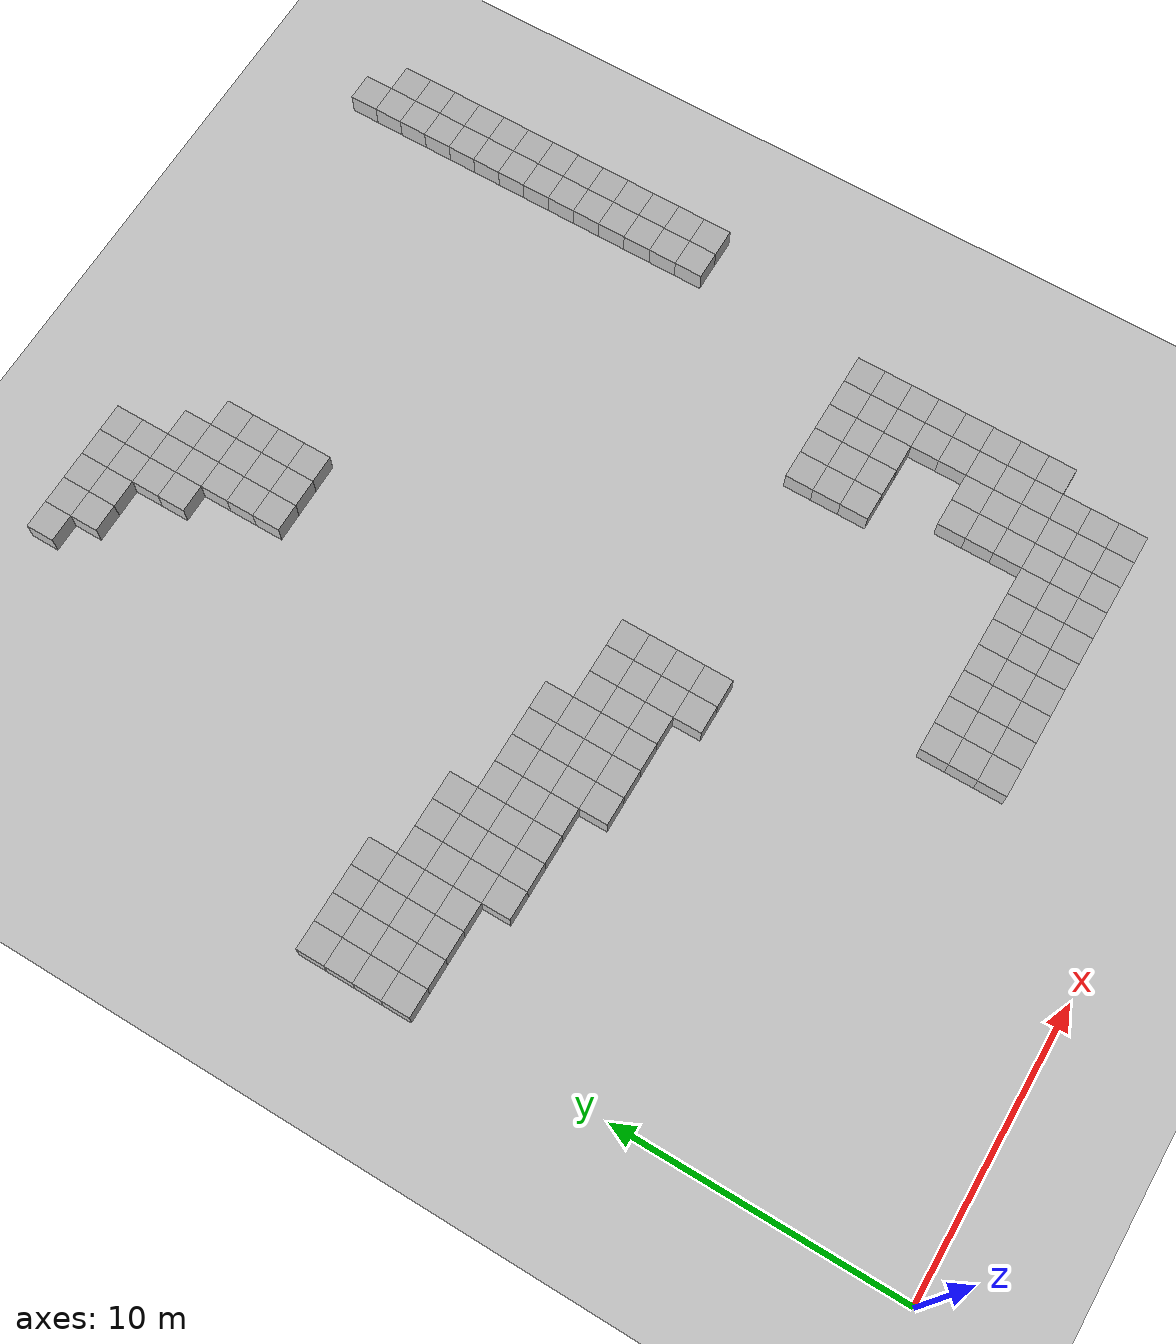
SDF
<sdf version="1.6">
 <world name="default">
  <model name="ground_plane">
   <static>1</static>
   <link name="link">
    <collision name="collision">
     <geometry><plane><normal>0 0 1</normal><size>100 100</size></plane></geometry>
     <surface>
      <contact><collide_bitmask>65535</collide_bitmask></contact>
      <friction><ode><mu>100</mu><mu2>50</mu2></ode></friction>
     </surface>
    </collision>
    <visual name="visual">
     <cast_shadows>0</cast_shadows>
     <geometry><plane><normal>0 0 1</normal><size>100 100</size></plane></geometry>
     <material>
      <script><uri>file://media/materials/scripts/gazebo.material</uri><name>Gazebo/Grey</name></script>
     </material>
    </visual>
   </link>
  </model>
  <model name="box_17">
   <static>1</static>
   <pose>0 17 0 0 -0 0</pose>
   <link name="link"><visual name="visual"><geometry><box><size>1 1 1.5</size></box></geometry></visual></link>
  </model>
  <model name="box_18">
   <static>1</static>
   <pose>0 18 0 0 -0 0</pose>
   <link name="link"><visual name="visual"><geometry><box><size>1 1 1.5</size></box></geometry></visual></link>
  </model>
  <model name="box_19">
   <static>1</static>
   <pose>0 19 0 0 -0 0</pose>
   <link name="link"><visual name="visual"><geometry><box><size>1 1 1.5</size></box></geometry></visual></link>
  </model>
  <model name="box_20">
   <static>1</static>
   <pose>0 20 0 0 -0 0</pose>
   <link name="link"><visual name="visual"><geometry><box><size>1 1 1.5</size></box></geometry></visual></link>
  </model>
  <model name="box_117">
   <static>1</static>
   <pose>1 17 0 0 -0 0</pose>
   <link name="link"><visual name="visual"><geometry><box><size>1 1 1.5</size></box></geometry></visual></link>
  </model>
  <model name="box_118">
   <static>1</static>
   <pose>1 18 0 0 -0 0</pose>
   <link name="link"><visual name="visual"><geometry><box><size>1 1 1.5</size></box></geometry></visual></link>
  </model>
  <model name="box_119">
   <static>1</static>
   <pose>1 19 0 0 -0 0</pose>
   <link name="link"><visual name="visual"><geometry><box><size>1 1 1.5</size></box></geometry></visual></link>
  </model>
  <model name="box_120">
   <static>1</static>
   <pose>1 20 0 0 -0 0</pose>
   <link name="link"><visual name="visual"><geometry><box><size>1 1 1.5</size></box></geometry></visual></link>
  </model>
  <model name="box_217">
   <static>1</static>
   <pose>2 17 0 0 -0 0</pose>
   <link name="link"><visual name="visual"><geometry><box><size>1 1 1.5</size></box></geometry></visual></link>
  </model>
  <model name="box_218">
   <static>1</static>
   <pose>2 18 0 0 -0 0</pose>
   <link name="link"><visual name="visual"><geometry><box><size>1 1 1.5</size></box></geometry></visual></link>
  </model>
  <model name="box_219">
   <static>1</static>
   <pose>2 19 0 0 -0 0</pose>
   <link name="link"><visual name="visual"><geometry><box><size>1 1 1.5</size></box></geometry></visual></link>
  </model>
  <model name="box_220">
   <static>1</static>
   <pose>2 20 0 0 -0 0</pose>
   <link name="link"><visual name="visual"><geometry><box><size>1 1 1.5</size></box></geometry></visual></link>
  </model>
  <model name="box_317">
   <static>1</static>
   <pose>3 17 0 0 -0 0</pose>
   <link name="link"><visual name="visual"><geometry><box><size>1 1 1.5</size></box></geometry></visual></link>
  </model>
  <model name="box_318">
   <static>1</static>
   <pose>3 18 0 0 -0 0</pose>
   <link name="link"><visual name="visual"><geometry><box><size>1 1 1.5</size></box></geometry></visual></link>
  </model>
  <model name="box_319">
   <static>1</static>
   <pose>3 19 0 0 -0 0</pose>
   <link name="link"><visual name="visual"><geometry><box><size>1 1 1.5</size></box></geometry></visual></link>
  </model>
  <model name="box_320">
   <static>1</static>
   <pose>3 20 0 0 -0 0</pose>
   <link name="link"><visual name="visual"><geometry><box><size>1 1 1.5</size></box></geometry></visual></link>
  </model>
  <model name="box_416">
   <static>1</static>
   <pose>4 16 0 0 -0 0</pose>
   <link name="link"><visual name="visual"><geometry><box><size>1 1 1.5</size></box></geometry></visual></link>
  </model>
  <model name="box_417">
   <static>1</static>
   <pose>4 17 0 0 -0 0</pose>
   <link name="link"><visual name="visual"><geometry><box><size>1 1 1.5</size></box></geometry></visual></link>
  </model>
  <model name="box_418">
   <static>1</static>
   <pose>4 18 0 0 -0 0</pose>
   <link name="link"><visual name="visual"><geometry><box><size>1 1 1.5</size></box></geometry></visual></link>
  </model>
  <model name="box_419">
   <static>1</static>
   <pose>4 19 0 0 -0 0</pose>
   <link name="link"><visual name="visual"><geometry><box><size>1 1 1.5</size></box></geometry></visual></link>
  </model>
  <model name="box_516">
   <static>1</static>
   <pose>5 16 0 0 -0 0</pose>
   <link name="link"><visual name="visual"><geometry><box><size>1 1 1.5</size></box></geometry></visual></link>
  </model>
  <model name="box_517">
   <static>1</static>
   <pose>5 17 0 0 -0 0</pose>
   <link name="link"><visual name="visual"><geometry><box><size>1 1 1.5</size></box></geometry></visual></link>
  </model>
  <model name="box_518">
   <static>1</static>
   <pose>5 18 0 0 -0 0</pose>
   <link name="link"><visual name="visual"><geometry><box><size>1 1 1.5</size></box></geometry></visual></link>
  </model>
  <model name="box_519">
   <static>1</static>
   <pose>5 19 0 0 -0 0</pose>
   <link name="link"><visual name="visual"><geometry><box><size>1 1 1.5</size></box></geometry></visual></link>
  </model>
  <model name="box_616">
   <static>1</static>
   <pose>6 16 0 0 -0 0</pose>
   <link name="link"><visual name="visual"><geometry><box><size>1 1 1.5</size></box></geometry></visual></link>
  </model>
  <model name="box_617">
   <static>1</static>
   <pose>6 17 0 0 -0 0</pose>
   <link name="link"><visual name="visual"><geometry><box><size>1 1 1.5</size></box></geometry></visual></link>
  </model>
  <model name="box_618">
   <static>1</static>
   <pose>6 18 0 0 -0 0</pose>
   <link name="link"><visual name="visual"><geometry><box><size>1 1 1.5</size></box></geometry></visual></link>
  </model>
  <model name="box_619">
   <static>1</static>
   <pose>6 19 0 0 -0 0</pose>
   <link name="link"><visual name="visual"><geometry><box><size>1 1 1.5</size></box></geometry></visual></link>
  </model>
  <model name="box_716">
   <static>1</static>
   <pose>7 16 0 0 -0 0</pose>
   <link name="link"><visual name="visual"><geometry><box><size>1 1 1.5</size></box></geometry></visual></link>
  </model>
  <model name="box_717">
   <static>1</static>
   <pose>7 17 0 0 -0 0</pose>
   <link name="link"><visual name="visual"><geometry><box><size>1 1 1.5</size></box></geometry></visual></link>
  </model>
  <model name="box_718">
   <static>1</static>
   <pose>7 18 0 0 -0 0</pose>
   <link name="link"><visual name="visual"><geometry><box><size>1 1 1.5</size></box></geometry></visual></link>
  </model>
  <model name="box_735">
   <static>1</static>
   <pose>7 35 0 0 -0 0</pose>
   <link name="link"><visual name="visual"><geometry><box><size>1 1 1.5</size></box></geometry></visual></link>
  </model>
  <model name="box_815">
   <static>1</static>
   <pose>8 15 0 0 -0 0</pose>
   <link name="link"><visual name="visual"><geometry><box><size>1 1 1.5</size></box></geometry></visual></link>
  </model>
  <model name="box_816">
   <static>1</static>
   <pose>8 16 0 0 -0 0</pose>
   <link name="link"><visual name="visual"><geometry><box><size>1 1 1.5</size></box></geometry></visual></link>
  </model>
  <model name="box_817">
   <static>1</static>
   <pose>8 17 0 0 -0 0</pose>
   <link name="link"><visual name="visual"><geometry><box><size>1 1 1.5</size></box></geometry></visual></link>
  </model>
  <model name="box_818">
   <static>1</static>
   <pose>8 18 0 0 -0 0</pose>
   <link name="link"><visual name="visual"><geometry><box><size>1 1 1.5</size></box></geometry></visual></link>
  </model>
  <model name="box_834">
   <static>1</static>
   <pose>8 34 0 0 -0 0</pose>
   <link name="link"><visual name="visual"><geometry><box><size>1 1 1.5</size></box></geometry></visual></link>
  </model>
  <model name="box_835">
   <static>1</static>
   <pose>8 35 0 0 -0 0</pose>
   <link name="link"><visual name="visual"><geometry><box><size>1 1 1.5</size></box></geometry></visual></link>
  </model>
  <model name="box_915">
   <static>1</static>
   <pose>9 15 0 0 -0 0</pose>
   <link name="link"><visual name="visual"><geometry><box><size>1 1 1.5</size></box></geometry></visual></link>
  </model>
  <model name="box_916">
   <static>1</static>
   <pose>9 16 0 0 -0 0</pose>
   <link name="link"><visual name="visual"><geometry><box><size>1 1 1.5</size></box></geometry></visual></link>
  </model>
  <model name="box_917">
   <static>1</static>
   <pose>9 17 0 0 -0 0</pose>
   <link name="link"><visual name="visual"><geometry><box><size>1 1 1.5</size></box></geometry></visual></link>
  </model>
  <model name="box_918">
   <static>1</static>
   <pose>9 18 0 0 -0 0</pose>
   <link name="link"><visual name="visual"><geometry><box><size>1 1 1.5</size></box></geometry></visual></link>
  </model>
  <model name="box_934">
   <static>1</static>
   <pose>9 34 0 0 -0 0</pose>
   <link name="link"><visual name="visual"><geometry><box><size>1 1 1.5</size></box></geometry></visual></link>
  </model>
  <model name="box_935">
   <static>1</static>
   <pose>9 35 0 0 -0 0</pose>
   <link name="link"><visual name="visual"><geometry><box><size>1 1 1.5</size></box></geometry></visual></link>
  </model>
  <model name="box_1015">
   <static>1</static>
   <pose>10 15 0 0 -0 0</pose>
   <link name="link"><visual name="visual"><geometry><box><size>1 1 1.5</size></box></geometry></visual></link>
  </model>
  <model name="box_1016">
   <static>1</static>
   <pose>10 16 0 0 -0 0</pose>
   <link name="link"><visual name="visual"><geometry><box><size>1 1 1.5</size></box></geometry></visual></link>
  </model>
  <model name="box_1017">
   <static>1</static>
   <pose>10 17 0 0 -0 0</pose>
   <link name="link"><visual name="visual"><geometry><box><size>1 1 1.5</size></box></geometry></visual></link>
  </model>
  <model name="box_1018">
   <static>1</static>
   <pose>10 18 0 0 -0 0</pose>
   <link name="link"><visual name="visual"><geometry><box><size>1 1 1.5</size></box></geometry></visual></link>
  </model>
  <model name="box_1032">
   <static>1</static>
   <pose>10 32 0 0 -0 0</pose>
   <link name="link"><visual name="visual"><geometry><box><size>1 1 1.5</size></box></geometry></visual></link>
  </model>
  <model name="box_1033">
   <static>1</static>
   <pose>10 33 0 0 -0 0</pose>
   <link name="link"><visual name="visual"><geometry><box><size>1 1 1.5</size></box></geometry></visual></link>
  </model>
  <model name="box_1034">
   <static>1</static>
   <pose>10 34 0 0 -0 0</pose>
   <link name="link"><visual name="visual"><geometry><box><size>1 1 1.5</size></box></geometry></visual></link>
  </model>
  <model name="box_1035">
   <static>1</static>
   <pose>10 35 0 0 -0 0</pose>
   <link name="link"><visual name="visual"><geometry><box><size>1 1 1.5</size></box></geometry></visual></link>
  </model>
  <model name="box_1115">
   <static>1</static>
   <pose>11 15 0 0 -0 0</pose>
   <link name="link"><visual name="visual"><geometry><box><size>1 1 1.5</size></box></geometry></visual></link>
  </model>
  <model name="box_1116">
   <static>1</static>
   <pose>11 16 0 0 -0 0</pose>
   <link name="link"><visual name="visual"><geometry><box><size>1 1 1.5</size></box></geometry></visual></link>
  </model>
  <model name="box_1117">
   <static>1</static>
   <pose>11 17 0 0 -0 0</pose>
   <link name="link"><visual name="visual"><geometry><box><size>1 1 1.5</size></box></geometry></visual></link>
  </model>
  <model name="box_1129">
   <static>1</static>
   <pose>11 29 0 0 -0 0</pose>
   <link name="link"><visual name="visual"><geometry><box><size>1 1 1.5</size></box></geometry></visual></link>
  </model>
  <model name="box_1130">
   <static>1</static>
   <pose>11 30 0 0 -0 0</pose>
   <link name="link"><visual name="visual"><geometry><box><size>1 1 1.5</size></box></geometry></visual></link>
  </model>
  <model name="box_1131">
   <static>1</static>
   <pose>11 31 0 0 -0 0</pose>
   <link name="link"><visual name="visual"><geometry><box><size>1 1 1.5</size></box></geometry></visual></link>
  </model>
  <model name="box_1132">
   <static>1</static>
   <pose>11 32 0 0 -0 0</pose>
   <link name="link"><visual name="visual"><geometry><box><size>1 1 1.5</size></box></geometry></visual></link>
  </model>
  <model name="box_1133">
   <static>1</static>
   <pose>11 33 0 0 -0 0</pose>
   <link name="link"><visual name="visual"><geometry><box><size>1 1 1.5</size></box></geometry></visual></link>
  </model>
  <model name="box_1134">
   <static>1</static>
   <pose>11 34 0 0 -0 0</pose>
   <link name="link"><visual name="visual"><geometry><box><size>1 1 1.5</size></box></geometry></visual></link>
  </model>
  <model name="box_1135">
   <static>1</static>
   <pose>11 35 0 0 -0 0</pose>
   <link name="link"><visual name="visual"><geometry><box><size>1 1 1.5</size></box></geometry></visual></link>
  </model>
  <model name="box_1214">
   <static>1</static>
   <pose>12 14 0 0 -0 0</pose>
   <link name="link"><visual name="visual"><geometry><box><size>1 1 1.5</size></box></geometry></visual></link>
  </model>
  <model name="box_1215">
   <static>1</static>
   <pose>12 15 0 0 -0 0</pose>
   <link name="link"><visual name="visual"><geometry><box><size>1 1 1.5</size></box></geometry></visual></link>
  </model>
  <model name="box_1216">
   <static>1</static>
   <pose>12 16 0 0 -0 0</pose>
   <link name="link"><visual name="visual"><geometry><box><size>1 1 1.5</size></box></geometry></visual></link>
  </model>
  <model name="box_1217">
   <static>1</static>
   <pose>12 17 0 0 -0 0</pose>
   <link name="link"><visual name="visual"><geometry><box><size>1 1 1.5</size></box></geometry></visual></link>
  </model>
  <model name="box_1229">
   <static>1</static>
   <pose>12 29 0 0 -0 0</pose>
   <link name="link"><visual name="visual"><geometry><box><size>1 1 1.5</size></box></geometry></visual></link>
  </model>
  <model name="box_1230">
   <static>1</static>
   <pose>12 30 0 0 -0 0</pose>
   <link name="link"><visual name="visual"><geometry><box><size>1 1 1.5</size></box></geometry></visual></link>
  </model>
  <model name="box_1231">
   <static>1</static>
   <pose>12 31 0 0 -0 0</pose>
   <link name="link"><visual name="visual"><geometry><box><size>1 1 1.5</size></box></geometry></visual></link>
  </model>
  <model name="box_1232">
   <static>1</static>
   <pose>12 32 0 0 -0 0</pose>
   <link name="link"><visual name="visual"><geometry><box><size>1 1 1.5</size></box></geometry></visual></link>
  </model>
  <model name="box_1233">
   <static>1</static>
   <pose>12 33 0 0 -0 0</pose>
   <link name="link"><visual name="visual"><geometry><box><size>1 1 1.5</size></box></geometry></visual></link>
  </model>
  <model name="box_1314">
   <static>1</static>
   <pose>13 14 0 0 -0 0</pose>
   <link name="link"><visual name="visual"><geometry><box><size>1 1 1.5</size></box></geometry></visual></link>
  </model>
  <model name="box_1315">
   <static>1</static>
   <pose>13 15 0 0 -0 0</pose>
   <link name="link"><visual name="visual"><geometry><box><size>1 1 1.5</size></box></geometry></visual></link>
  </model>
  <model name="box_1316">
   <static>1</static>
   <pose>13 16 0 0 -0 0</pose>
   <link name="link"><visual name="visual"><geometry><box><size>1 1 1.5</size></box></geometry></visual></link>
  </model>
  <model name="box_1317">
   <static>1</static>
   <pose>13 17 0 0 -0 0</pose>
   <link name="link"><visual name="visual"><geometry><box><size>1 1 1.5</size></box></geometry></visual></link>
  </model>
  <model name="box_1329">
   <static>1</static>
   <pose>13 29 0 0 -0 0</pose>
   <link name="link"><visual name="visual"><geometry><box><size>1 1 1.5</size></box></geometry></visual></link>
  </model>
  <model name="box_1330">
   <static>1</static>
   <pose>13 30 0 0 -0 0</pose>
   <link name="link"><visual name="visual"><geometry><box><size>1 1 1.5</size></box></geometry></visual></link>
  </model>
  <model name="box_1331">
   <static>1</static>
   <pose>13 31 0 0 -0 0</pose>
   <link name="link"><visual name="visual"><geometry><box><size>1 1 1.5</size></box></geometry></visual></link>
  </model>
  <model name="box_1332">
   <static>1</static>
   <pose>13 32 0 0 -0 0</pose>
   <link name="link"><visual name="visual"><geometry><box><size>1 1 1.5</size></box></geometry></visual></link>
  </model>
  <model name="box_1505">
   <static>1</static>
   <pose>15 5 0 0 -0 0</pose>
   <link name="link"><visual name="visual"><geometry><box><size>1 1 1.5</size></box></geometry></visual></link>
  </model>
  <model name="box_1506">
   <static>1</static>
   <pose>15 6 0 0 -0 0</pose>
   <link name="link"><visual name="visual"><geometry><box><size>1 1 1.5</size></box></geometry></visual></link>
  </model>
  <model name="box_1507">
   <static>1</static>
   <pose>15 7 0 0 -0 0</pose>
   <link name="link"><visual name="visual"><geometry><box><size>1 1 1.5</size></box></geometry></visual></link>
  </model>
  <model name="box_1605">
   <static>1</static>
   <pose>16 5 0 0 -0 0</pose>
   <link name="link"><visual name="visual"><geometry><box><size>1 1 1.5</size></box></geometry></visual></link>
  </model>
  <model name="box_1606">
   <static>1</static>
   <pose>16 6 0 0 -0 0</pose>
   <link name="link"><visual name="visual"><geometry><box><size>1 1 1.5</size></box></geometry></visual></link>
  </model>
  <model name="box_1607">
   <static>1</static>
   <pose>16 7 0 0 -0 0</pose>
   <link name="link"><visual name="visual"><geometry><box><size>1 1 1.5</size></box></geometry></visual></link>
  </model>
  <model name="box_1705">
   <static>1</static>
   <pose>17 5 0 0 -0 0</pose>
   <link name="link"><visual name="visual"><geometry><box><size>1 1 1.5</size></box></geometry></visual></link>
  </model>
  <model name="box_1706">
   <static>1</static>
   <pose>17 6 0 0 -0 0</pose>
   <link name="link"><visual name="visual"><geometry><box><size>1 1 1.5</size></box></geometry></visual></link>
  </model>
  <model name="box_1707">
   <static>1</static>
   <pose>17 7 0 0 -0 0</pose>
   <link name="link"><visual name="visual"><geometry><box><size>1 1 1.5</size></box></geometry></visual></link>
  </model>
  <model name="box_1805">
   <static>1</static>
   <pose>18 5 0 0 -0 0</pose>
   <link name="link"><visual name="visual"><geometry><box><size>1 1 1.5</size></box></geometry></visual></link>
  </model>
  <model name="box_1806">
   <static>1</static>
   <pose>18 6 0 0 -0 0</pose>
   <link name="link"><visual name="visual"><geometry><box><size>1 1 1.5</size></box></geometry></visual></link>
  </model>
  <model name="box_1807">
   <static>1</static>
   <pose>18 7 0 0 -0 0</pose>
   <link name="link"><visual name="visual"><geometry><box><size>1 1 1.5</size></box></geometry></visual></link>
  </model>
  <model name="box_1905">
   <static>1</static>
   <pose>19 5 0 0 -0 0</pose>
   <link name="link"><visual name="visual"><geometry><box><size>1 1 1.5</size></box></geometry></visual></link>
  </model>
  <model name="box_1906">
   <static>1</static>
   <pose>19 6 0 0 -0 0</pose>
   <link name="link"><visual name="visual"><geometry><box><size>1 1 1.5</size></box></geometry></visual></link>
  </model>
  <model name="box_1907">
   <static>1</static>
   <pose>19 7 0 0 -0 0</pose>
   <link name="link"><visual name="visual"><geometry><box><size>1 1 1.5</size></box></geometry></visual></link>
  </model>
  <model name="box_2005">
   <static>1</static>
   <pose>20 5 0 0 -0 0</pose>
   <link name="link"><visual name="visual"><geometry><box><size>1 1 1.5</size></box></geometry></visual></link>
  </model>
  <model name="box_2006">
   <static>1</static>
   <pose>20 6 0 0 -0 0</pose>
   <link name="link"><visual name="visual"><geometry><box><size>1 1 1.5</size></box></geometry></visual></link>
  </model>
  <model name="box_2007">
   <static>1</static>
   <pose>20 7 0 0 -0 0</pose>
   <link name="link"><visual name="visual"><geometry><box><size>1 1 1.5</size></box></geometry></visual></link>
  </model>
  <model name="box_2105">
   <static>1</static>
   <pose>21 5 0 0 -0 0</pose>
   <link name="link"><visual name="visual"><geometry><box><size>1 1 1.5</size></box></geometry></visual></link>
  </model>
  <model name="box_2106">
   <static>1</static>
   <pose>21 6 0 0 -0 0</pose>
   <link name="link"><visual name="visual"><geometry><box><size>1 1 1.5</size></box></geometry></visual></link>
  </model>
  <model name="box_2107">
   <static>1</static>
   <pose>21 7 0 0 -0 0</pose>
   <link name="link"><visual name="visual"><geometry><box><size>1 1 1.5</size></box></geometry></visual></link>
  </model>
  <model name="box_2113">
   <static>1</static>
   <pose>21 13 0 0 -0 0</pose>
   <link name="link"><visual name="visual"><geometry><box><size>1 1 1.5</size></box></geometry></visual></link>
  </model>
  <model name="box_2114">
   <static>1</static>
   <pose>21 14 0 0 -0 0</pose>
   <link name="link"><visual name="visual"><geometry><box><size>1 1 1.5</size></box></geometry></visual></link>
  </model>
  <model name="box_2115">
   <static>1</static>
   <pose>21 15 0 0 -0 0</pose>
   <link name="link"><visual name="visual"><geometry><box><size>1 1 1.5</size></box></geometry></visual></link>
  </model>
  <model name="box_2205">
   <static>1</static>
   <pose>22 5 0 0 -0 0</pose>
   <link name="link"><visual name="visual"><geometry><box><size>1 1 1.5</size></box></geometry></visual></link>
  </model>
  <model name="box_2206">
   <static>1</static>
   <pose>22 6 0 0 -0 0</pose>
   <link name="link"><visual name="visual"><geometry><box><size>1 1 1.5</size></box></geometry></visual></link>
  </model>
  <model name="box_2207">
   <static>1</static>
   <pose>22 7 0 0 -0 0</pose>
   <link name="link"><visual name="visual"><geometry><box><size>1 1 1.5</size></box></geometry></visual></link>
  </model>
  <model name="box_2208">
   <static>1</static>
   <pose>22 8 0 0 -0 0</pose>
   <link name="link"><visual name="visual"><geometry><box><size>1 1 1.5</size></box></geometry></visual></link>
  </model>
  <model name="box_2209">
   <static>1</static>
   <pose>22 9 0 0 -0 0</pose>
   <link name="link"><visual name="visual"><geometry><box><size>1 1 1.5</size></box></geometry></visual></link>
  </model>
  <model name="box_2210">
   <static>1</static>
   <pose>22 10 0 0 -0 0</pose>
   <link name="link"><visual name="visual"><geometry><box><size>1 1 1.5</size></box></geometry></visual></link>
  </model>
  <model name="box_2213">
   <static>1</static>
   <pose>22 13 0 0 -0 0</pose>
   <link name="link"><visual name="visual"><geometry><box><size>1 1 1.5</size></box></geometry></visual></link>
  </model>
  <model name="box_2214">
   <static>1</static>
   <pose>22 14 0 0 -0 0</pose>
   <link name="link"><visual name="visual"><geometry><box><size>1 1 1.5</size></box></geometry></visual></link>
  </model>
  <model name="box_2215">
   <static>1</static>
   <pose>22 15 0 0 -0 0</pose>
   <link name="link"><visual name="visual"><geometry><box><size>1 1 1.5</size></box></geometry></visual></link>
  </model>
  <model name="box_2305">
   <static>1</static>
   <pose>23 5 0 0 -0 0</pose>
   <link name="link"><visual name="visual"><geometry><box><size>1 1 1.5</size></box></geometry></visual></link>
  </model>
  <model name="box_2306">
   <static>1</static>
   <pose>23 6 0 0 -0 0</pose>
   <link name="link"><visual name="visual"><geometry><box><size>1 1 1.5</size></box></geometry></visual></link>
  </model>
  <model name="box_2307">
   <static>1</static>
   <pose>23 7 0 0 -0 0</pose>
   <link name="link"><visual name="visual"><geometry><box><size>1 1 1.5</size></box></geometry></visual></link>
  </model>
  <model name="box_2308">
   <static>1</static>
   <pose>23 8 0 0 -0 0</pose>
   <link name="link"><visual name="visual"><geometry><box><size>1 1 1.5</size></box></geometry></visual></link>
  </model>
  <model name="box_2309">
   <static>1</static>
   <pose>23 9 0 0 -0 0</pose>
   <link name="link"><visual name="visual"><geometry><box><size>1 1 1.5</size></box></geometry></visual></link>
  </model>
  <model name="box_2310">
   <static>1</static>
   <pose>23 10 0 0 -0 0</pose>
   <link name="link"><visual name="visual"><geometry><box><size>1 1 1.5</size></box></geometry></visual></link>
  </model>
  <model name="box_2313">
   <static>1</static>
   <pose>23 13 0 0 -0 0</pose>
   <link name="link"><visual name="visual"><geometry><box><size>1 1 1.5</size></box></geometry></visual></link>
  </model>
  <model name="box_2314">
   <static>1</static>
   <pose>23 14 0 0 -0 0</pose>
   <link name="link"><visual name="visual"><geometry><box><size>1 1 1.5</size></box></geometry></visual></link>
  </model>
  <model name="box_2315">
   <static>1</static>
   <pose>23 15 0 0 -0 0</pose>
   <link name="link"><visual name="visual"><geometry><box><size>1 1 1.5</size></box></geometry></visual></link>
  </model>
  <model name="box_2405">
   <static>1</static>
   <pose>24 5 0 0 -0 0</pose>
   <link name="link"><visual name="visual"><geometry><box><size>1 1 1.5</size></box></geometry></visual></link>
  </model>
  <model name="box_2406">
   <static>1</static>
   <pose>24 6 0 0 -0 0</pose>
   <link name="link"><visual name="visual"><geometry><box><size>1 1 1.5</size></box></geometry></visual></link>
  </model>
  <model name="box_2407">
   <static>1</static>
   <pose>24 7 0 0 -0 0</pose>
   <link name="link"><visual name="visual"><geometry><box><size>1 1 1.5</size></box></geometry></visual></link>
  </model>
  <model name="box_2408">
   <static>1</static>
   <pose>24 8 0 0 -0 0</pose>
   <link name="link"><visual name="visual"><geometry><box><size>1 1 1.5</size></box></geometry></visual></link>
  </model>
  <model name="box_2409">
   <static>1</static>
   <pose>24 9 0 0 -0 0</pose>
   <link name="link"><visual name="visual"><geometry><box><size>1 1 1.5</size></box></geometry></visual></link>
  </model>
  <model name="box_2410">
   <static>1</static>
   <pose>24 10 0 0 -0 0</pose>
   <link name="link"><visual name="visual"><geometry><box><size>1 1 1.5</size></box></geometry></visual></link>
  </model>
  <model name="box_2411">
   <static>1</static>
   <pose>24 11 0 0 -0 0</pose>
   <link name="link"><visual name="visual"><geometry><box><size>1 1 1.5</size></box></geometry></visual></link>
  </model>
  <model name="box_2412">
   <static>1</static>
   <pose>24 12 0 0 -0 0</pose>
   <link name="link"><visual name="visual"><geometry><box><size>1 1 1.5</size></box></geometry></visual></link>
  </model>
  <model name="box_2413">
   <static>1</static>
   <pose>24 13 0 0 -0 0</pose>
   <link name="link"><visual name="visual"><geometry><box><size>1 1 1.5</size></box></geometry></visual></link>
  </model>
  <model name="box_2414">
   <static>1</static>
   <pose>24 14 0 0 -0 0</pose>
   <link name="link"><visual name="visual"><geometry><box><size>1 1 1.5</size></box></geometry></visual></link>
  </model>
  <model name="box_2415">
   <static>1</static>
   <pose>24 15 0 0 -0 0</pose>
   <link name="link"><visual name="visual"><geometry><box><size>1 1 1.5</size></box></geometry></visual></link>
  </model>
  <model name="box_2508">
   <static>1</static>
   <pose>25 8 0 0 -0 0</pose>
   <link name="link"><visual name="visual"><geometry><box><size>1 1 1.5</size></box></geometry></visual></link>
  </model>
  <model name="box_2509">
   <static>1</static>
   <pose>25 9 0 0 -0 0</pose>
   <link name="link"><visual name="visual"><geometry><box><size>1 1 1.5</size></box></geometry></visual></link>
  </model>
  <model name="box_2510">
   <static>1</static>
   <pose>25 10 0 0 -0 0</pose>
   <link name="link"><visual name="visual"><geometry><box><size>1 1 1.5</size></box></geometry></visual></link>
  </model>
  <model name="box_2511">
   <static>1</static>
   <pose>25 11 0 0 -0 0</pose>
   <link name="link"><visual name="visual"><geometry><box><size>1 1 1.5</size></box></geometry></visual></link>
  </model>
  <model name="box_2512">
   <static>1</static>
   <pose>25 12 0 0 -0 0</pose>
   <link name="link"><visual name="visual"><geometry><box><size>1 1 1.5</size></box></geometry></visual></link>
  </model>
  <model name="box_2513">
   <static>1</static>
   <pose>25 13 0 0 -0 0</pose>
   <link name="link"><visual name="visual"><geometry><box><size>1 1 1.5</size></box></geometry></visual></link>
  </model>
  <model name="box_2514">
   <static>1</static>
   <pose>25 14 0 0 -0 0</pose>
   <link name="link"><visual name="visual"><geometry><box><size>1 1 1.5</size></box></geometry></visual></link>
  </model>
  <model name="box_2515">
   <static>1</static>
   <pose>25 15 0 0 -0 0</pose>
   <link name="link"><visual name="visual"><geometry><box><size>1 1 1.5</size></box></geometry></visual></link>
  </model>
  <model name="box_2622">
   <static>1</static>
   <pose>26 22 0 0 -0 0</pose>
   <link name="link"><visual name="visual"><geometry><box><size>1 1 1.5</size></box></geometry></visual></link>
  </model>
  <model name="box_2623">
   <static>1</static>
   <pose>26 23 0 0 -0 0</pose>
   <link name="link"><visual name="visual"><geometry><box><size>1 1 1.5</size></box></geometry></visual></link>
  </model>
  <model name="box_2624">
   <static>1</static>
   <pose>26 24 0 0 -0 0</pose>
   <link name="link"><visual name="visual"><geometry><box><size>1 1 1.5</size></box></geometry></visual></link>
  </model>
  <model name="box_2625">
   <static>1</static>
   <pose>26 25 0 0 -0 0</pose>
   <link name="link"><visual name="visual"><geometry><box><size>1 1 1.5</size></box></geometry></visual></link>
  </model>
  <model name="box_2626">
   <static>1</static>
   <pose>26 26 0 0 -0 0</pose>
   <link name="link"><visual name="visual"><geometry><box><size>1 1 1.5</size></box></geometry></visual></link>
  </model>
  <model name="box_2627">
   <static>1</static>
   <pose>26 27 0 0 -0 0</pose>
   <link name="link"><visual name="visual"><geometry><box><size>1 1 1.5</size></box></geometry></visual></link>
  </model>
  <model name="box_2628">
   <static>1</static>
   <pose>26 28 0 0 -0 0</pose>
   <link name="link"><visual name="visual"><geometry><box><size>1 1 1.5</size></box></geometry></visual></link>
  </model>
  <model name="box_2629">
   <static>1</static>
   <pose>26 29 0 0 -0 0</pose>
   <link name="link"><visual name="visual"><geometry><box><size>1 1 1.5</size></box></geometry></visual></link>
  </model>
  <model name="box_2630">
   <static>1</static>
   <pose>26 30 0 0 -0 0</pose>
   <link name="link"><visual name="visual"><geometry><box><size>1 1 1.5</size></box></geometry></visual></link>
  </model>
  <model name="box_2631">
   <static>1</static>
   <pose>26 31 0 0 -0 0</pose>
   <link name="link"><visual name="visual"><geometry><box><size>1 1 1.5</size></box></geometry></visual></link>
  </model>
  <model name="box_2632">
   <static>1</static>
   <pose>26 32 0 0 -0 0</pose>
   <link name="link"><visual name="visual"><geometry><box><size>1 1 1.5</size></box></geometry></visual></link>
  </model>
  <model name="box_2633">
   <static>1</static>
   <pose>26 33 0 0 -0 0</pose>
   <link name="link"><visual name="visual"><geometry><box><size>1 1 1.5</size></box></geometry></visual></link>
  </model>
  <model name="box_2634">
   <static>1</static>
   <pose>26 34 0 0 -0 0</pose>
   <link name="link"><visual name="visual"><geometry><box><size>1 1 1.5</size></box></geometry></visual></link>
  </model>
  <model name="box_2635">
   <static>1</static>
   <pose>26 35 0 0 -0 0</pose>
   <link name="link"><visual name="visual"><geometry><box><size>1 1 1.5</size></box></geometry></visual></link>
  </model>
  <model name="box_2722">
   <static>1</static>
   <pose>27 22 0 0 -0 0</pose>
   <link name="link"><visual name="visual"><geometry><box><size>1 1 1.5</size></box></geometry></visual></link>
  </model>
  <model name="box_2723">
   <static>1</static>
   <pose>27 23 0 0 -0 0</pose>
   <link name="link"><visual name="visual"><geometry><box><size>1 1 1.5</size></box></geometry></visual></link>
  </model>
  <model name="box_2724">
   <static>1</static>
   <pose>27 24 0 0 -0 0</pose>
   <link name="link"><visual name="visual"><geometry><box><size>1 1 1.5</size></box></geometry></visual></link>
  </model>
  <model name="box_2725">
   <static>1</static>
   <pose>27 25 0 0 -0 0</pose>
   <link name="link"><visual name="visual"><geometry><box><size>1 1 1.5</size></box></geometry></visual></link>
  </model>
  <model name="box_2726">
   <static>1</static>
   <pose>27 26 0 0 -0 0</pose>
   <link name="link"><visual name="visual"><geometry><box><size>1 1 1.5</size></box></geometry></visual></link>
  </model>
  <model name="box_2727">
   <static>1</static>
   <pose>27 27 0 0 -0 0</pose>
   <link name="link"><visual name="visual"><geometry><box><size>1 1 1.5</size></box></geometry></visual></link>
  </model>
  <model name="box_2728">
   <static>1</static>
   <pose>27 28 0 0 -0 0</pose>
   <link name="link"><visual name="visual"><geometry><box><size>1 1 1.5</size></box></geometry></visual></link>
  </model>
  <model name="box_2729">
   <static>1</static>
   <pose>27 29 0 0 -0 0</pose>
   <link name="link"><visual name="visual"><geometry><box><size>1 1 1.5</size></box></geometry></visual></link>
  </model>
  <model name="box_2730">
   <static>1</static>
   <pose>27 30 0 0 -0 0</pose>
   <link name="link"><visual name="visual"><geometry><box><size>1 1 1.5</size></box></geometry></visual></link>
  </model>
  <model name="box_2731">
   <static>1</static>
   <pose>27 31 0 0 -0 0</pose>
   <link name="link"><visual name="visual"><geometry><box><size>1 1 1.5</size></box></geometry></visual></link>
  </model>
  <model name="box_2732">
   <static>1</static>
   <pose>27 32 0 0 -0 0</pose>
   <link name="link"><visual name="visual"><geometry><box><size>1 1 1.5</size></box></geometry></visual></link>
  </model>
  <model name="box_2733">
   <static>1</static>
   <pose>27 33 0 0 -0 0</pose>
   <link name="link"><visual name="visual"><geometry><box><size>1 1 1.5</size></box></geometry></visual></link>
  </model>
  <model name="box_2734">
   <static>1</static>
   <pose>27 34 0 0 -0 0</pose>
   <link name="link"><visual name="visual"><geometry><box><size>1 1 1.5</size></box></geometry></visual></link>
  </model>
 </world>
</sdf>
